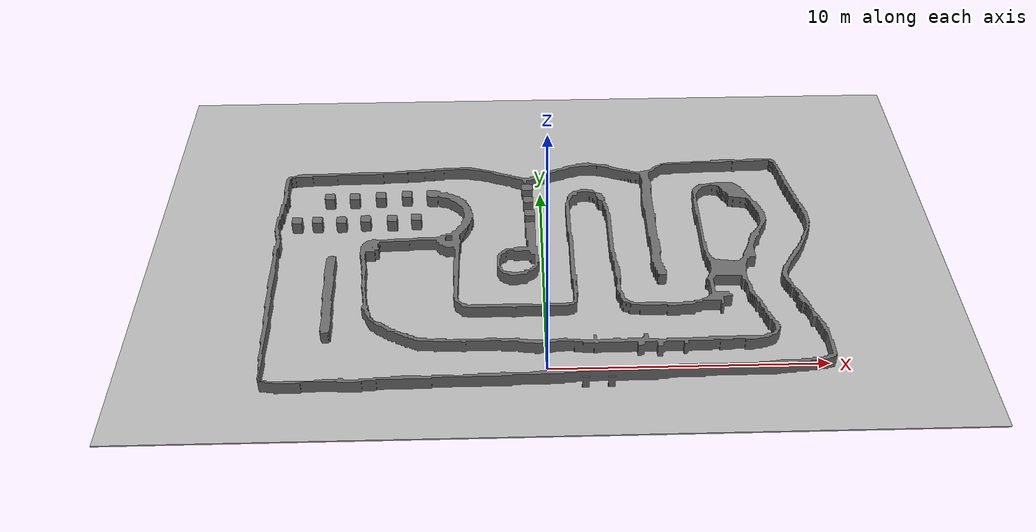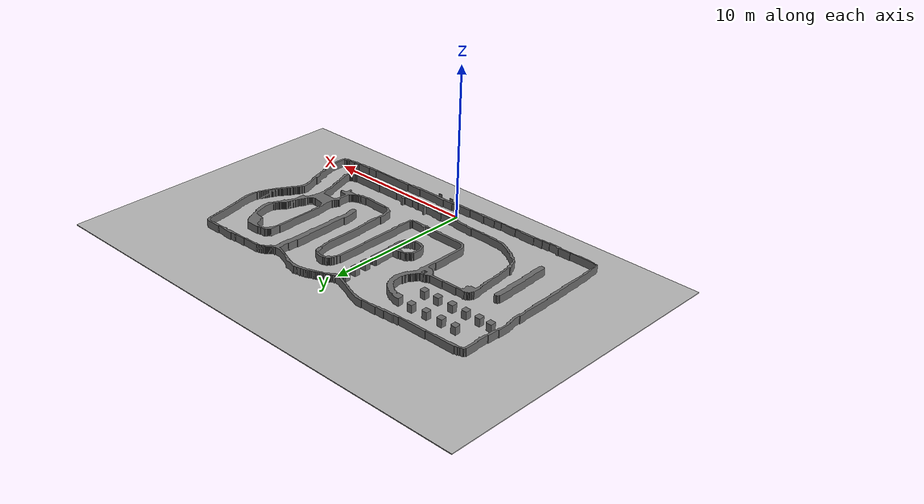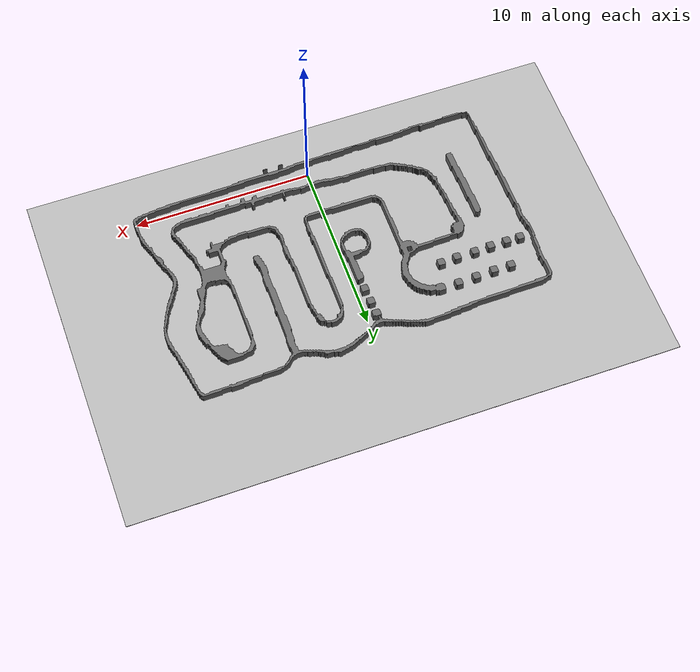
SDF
<?xml version="1.0"?>
<sdf version="1.6">
  <world name="point_lio_competition_clear">
    <include><uri>model://sun</uri></include>
    <!-- Exact mesh exported from point_lio_competition_track.blend. -->
    <include><uri>model://point_lio_competition_track</uri></include>
    <gravity>0 0 -9.80665</gravity>
    <physics name="ode_physics" type="ode">
      <max_step_size>0.002</max_step_size>
      <real_time_update_rate>500</real_time_update_rate>
      <real_time_factor>1.0</real_time_factor>
      <ode>
        <solver><type>quick</type><iters>80</iters><sor>1.3</sor></solver>
        <constraints><cfm>0</cfm><erp>0.2</erp><contact_max_correcting_vel>0.1</contact_max_correcting_vel><contact_surface_layer>0.001</contact_surface_layer></constraints>
      </ode>
    </physics>
    <scene><ambient>0.45 0.45 0.45 1</ambient><background>0.72 0.80 0.90 1</background><shadows>false</shadows></scene>
    <gui fullscreen="0"><camera name="track_overview"><pose>18 -15 27 0 0.72 2.25</pose><view_controller>orbit</view_controller></camera></gui>
  </world>
</sdf>

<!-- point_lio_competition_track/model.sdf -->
<sdf version="1.6">
  <model name="point_lio_competition_track">
    <static>true</static>

    <!-- The floor covers the complete 615 x 403 map at 0.05 m/cell. -->
    <link name="floor_link">
      <pose>0.157548 6.952436 -0.025 0 0 0</pose>
      <collision name="floor_collision">
        <geometry>
          <box>
            <size>30.75 20.15 0.05</size>
          </box>
        </geometry>
        <surface>
          <friction>
            <ode>
              <mu>1.4</mu>
              <mu2>1.4</mu2>
            </ode>
          </friction>
          <contact>
            <collide_bitmask>65535</collide_bitmask>
          </contact>
        </surface>
      </collision>
      <visual name="floor_visual">
        <cast_shadows>false</cast_shadows>
        <geometry>
          <box>
            <size>30.75 20.15 0.05</size>
          </box>
        </geometry>
        <material>
          <ambient>0.62 0.62 0.62 1</ambient>
          <diffuse>0.72 0.72 0.72 1</diffuse>
          <specular>0.05 0.05 0.05 1</specular>
        </material>
      </visual>
    </link>

    <!-- Vertices are already expressed in the Point-LIO map/world frame. -->
    <link name="walls_link">
      <collision name="walls_collision">
        <geometry>
          <mesh>
            <uri>model://point_lio_competition_track/meshes/walls.obj</uri>
          </mesh>
        </geometry>
        <surface>
          <friction>
            <ode>
              <mu>0.9</mu>
              <mu2>0.9</mu2>
            </ode>
          </friction>
          <contact>
            <collide_bitmask>65535</collide_bitmask>
            <ode>
              <kp>1000000</kp>
              <kd>10</kd>
              <max_vel>0.1</max_vel>
              <min_depth>0.001</min_depth>
            </ode>
          </contact>
        </surface>
      </collision>
      <visual name="walls_visual">
        <cast_shadows>false</cast_shadows>
        <geometry>
          <mesh>
            <uri>model://point_lio_competition_track/meshes/walls.obj</uri>
          </mesh>
        </geometry>
        <material>
          <ambient>0.34 0.34 0.34 1</ambient>
          <diffuse>0.42 0.42 0.42 1</diffuse>
          <specular>0.04 0.04 0.04 1</specular>
        </material>
      </visual>
    </link>
  </model>
</sdf>
